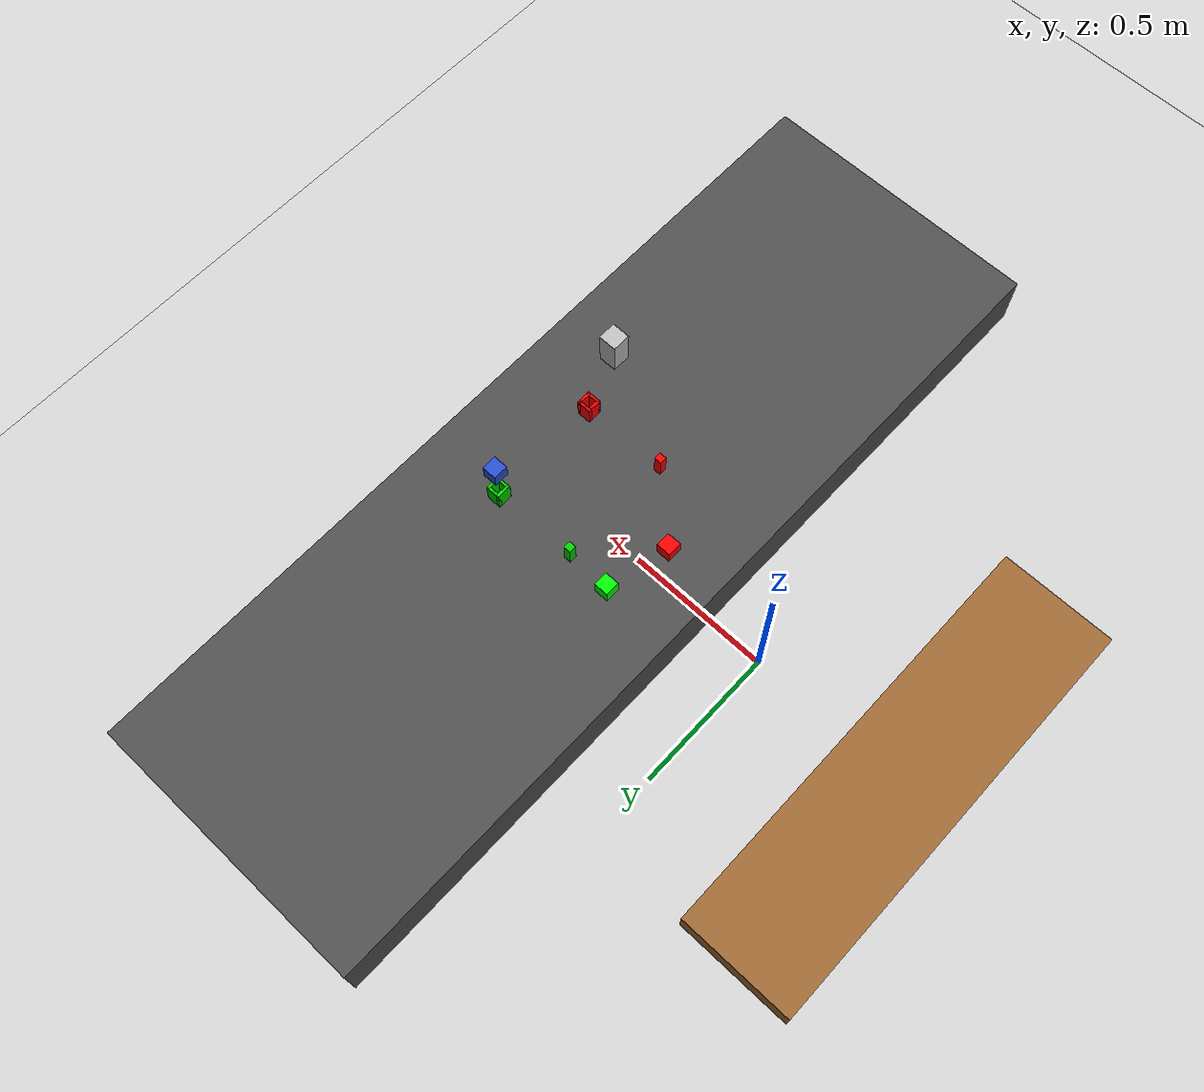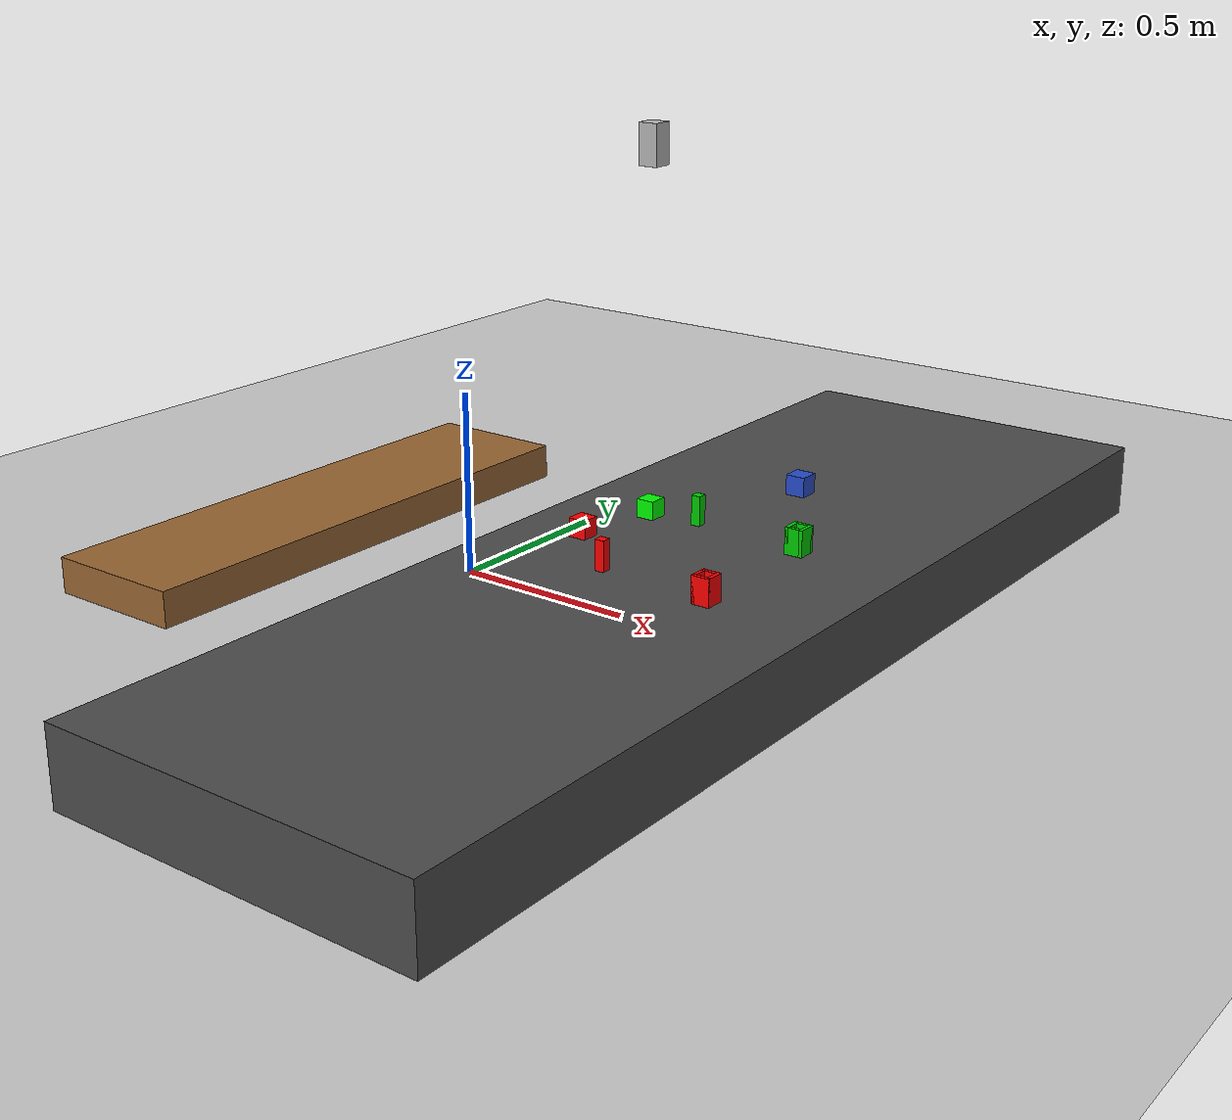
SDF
<?xml version="1.0" ?>
<sdf version="1.8">
  <world name="pick_and_place_world">

    <!-- Physics -->
    <physics name="1ms" type="ignored">
      <max_step_size>0.001</max_step_size>
      <real_time_factor>1.0</real_time_factor>
    </physics>

    <!-- Plugins - Updated for Gazebo Harmonic 8.x -->
    <plugin
      filename="gz-sim-physics-system"
      name="gz::sim::systems::Physics">
    </plugin>
    <plugin
      filename="gz-sim-user-commands-system"
      name="gz::sim::systems::UserCommands">
    </plugin>
    <plugin
      filename="gz-sim-scene-broadcaster-system"
      name="gz::sim::systems::SceneBroadcaster">
    </plugin>
    <plugin
      filename="gz-sim-sensors-system"
      name="gz::sim::systems::Sensors">
      <render_engine>ogre2</render_engine>
    </plugin>
    <plugin
      filename="gz-sim-imu-system"
      name="gz::sim::systems::Imu">
    </plugin>

    <!-- Lighting -->
    <light type="directional" name="sun">
      <cast_shadows>true</cast_shadows>
      <pose>0 0 10 0 0 0</pose>
      <diffuse>0.8 0.8 0.8 1</diffuse>
      <specular>0.2 0.2 0.2 1</specular>
      <attenuation>
        <range>1000</range>
        <constant>0.9</constant>
        <linear>0.01</linear>
        <quadratic>0.001</quadratic>
      </attenuation>
      <direction>-0.5 0.1 -0.9</direction>
    </light>

    <!-- Ground plane -->
    <model name="ground_plane">
      <static>true</static>
      <link name="link">
        <collision name="collision">
          <geometry>
            <plane>
              <normal>0 0 1</normal>
              <size>100 100</size>
            </plane>
          </geometry>
        </collision>
        <visual name="visual">
          <geometry>
            <plane>
              <normal>0 0 1</normal>
              <size>100 100</size>
            </plane>
          </geometry>
          <material>
            <ambient>0.8 0.8 0.8 1</ambient>
            <diffuse>0.8 0.8 0.8 1</diffuse>
            <specular>0.8 0.8 0.8 1</specular>
          </material>
        </visual>
      </link>
    </model>

    <!-- Workbench -->
    <model name="workbench">
      <pose>0.7 0 0.1 0 0 0</pose>
      <static>true</static>
      <link name="link">
        <collision name="collision">
          <geometry>
            <box>
              <size>1.0 3.0 0.2</size>
            </box>
          </geometry>
        </collision>
        <visual name="visual">
          <geometry>
            <box>
              <size>1.0 3.0 0.2</size>
            </box>
          </geometry>
          <material>
            <ambient>0.2 0.2 0.2 1</ambient>
            <diffuse>0.3 0.3 0.3 1</diffuse>
          </material>
        </visual>
      </link>
    </model>

    <!-- Bin bench -->
    <model name="bin_bench">
      <pose>-0.55 0 0.05 0 0 0</pose>
      <static>true</static>
      <link name="link">
        <collision name="collision">
          <geometry>
            <box>
              <size>0.4 1.5 0.1</size>
            </box>
          </geometry>
        </collision>
        <visual name="visual">
          <geometry>
            <box>
              <size>0.4 1.5 0.1</size>
            </box>
          </geometry>
          <material>
            <ambient>0.5 0.3 0.1 1</ambient>
            <diffuse>0.6 0.4 0.2 1</diffuse>
          </material>
        </visual>
      </link>
    </model>

    <!-- Colored bins removed per user request -->

    <!-- Red blocks -->
    <model name="red_block">
      <plugin filename="gz-sim-pose-publisher-system" name="gz::sim::systems::PosePublisher">
        <publish_link_pose>false</publish_link_pose>
        <use_pose_vector_msg>false</use_pose_vector_msg>
        <static_publisher>true</static_publisher>
        <static_update_frequency>30</static_update_frequency>
      </plugin>
      <pose>0.4 -0.02 0.225 0 0 0</pose>
      <link name="link">
        <inertial>
          <mass>0.05</mass>
          <inertia>
            <ixx>0.00002</ixx>
            <iyy>0.00002</iyy>
            <izz>0.00002</izz>
          </inertia>
        </inertial>
        <collision name="collision">
          <geometry>
            <box>
              <size>0.05 0.05 0.05</size>
            </box>
          </geometry>
        </collision>
        <visual name="visual">
          <geometry>
            <box>
              <size>0.05 0.05 0.05</size>
            </box>
          </geometry>
          <material>
            <ambient>1 0 0 1</ambient>
            <diffuse>1 0 0 1</diffuse>
          </material>
        </visual>
      </link>
    </model>

    <!-- Green block -->
    <model name="green_block">
      <plugin filename="gz-sim-pose-publisher-system" name="gz::sim::systems::PosePublisher">
        <publish_link_pose>false</publish_link_pose>
        <use_pose_vector_msg>false</use_pose_vector_msg>
        <static_publisher>true</static_publisher>
        <static_update_frequency>30</static_update_frequency>
      </plugin>
      <pose>0.45 0.2 0.225 0 0 0</pose>
      <link name="link">
        <inertial>
          <mass>0.05</mass>
          <inertia>
            <ixx>0.00002</ixx>
            <iyy>0.00002</iyy>
            <izz>0.00002</izz>
          </inertia>
        </inertial>
        <collision name="collision">
          <geometry>
            <box>
              <size>0.05 0.05 0.05</size>
            </box>
          </geometry>
        </collision>
        <visual name="visual">
          <geometry>
            <box>
              <size>0.05 0.05 0.05</size>
            </box>
          </geometry>
          <material>
            <ambient>0 1 0 1</ambient>
            <diffuse>0 1 0 1</diffuse>
          </material>
        </visual>
      </link>
    </model>

    <!-- Solid Cuboid for Insertion Task (Red Peg) -->
    <include>
      <uri>model://red_solid</uri>
      <name>red_solid</name>
      <pose>0.6 -0.2 0.25 0 1.5708 4.7124</pose>
    </include>

    <!-- Hollow Receptacle for Insertion Task (Red Box) -->
    <include>
      <uri>model://red_hollow</uri>
      <name>red_hollow</name>
      <pose>0.9 -0.2 0.231 0 -1.5708 0</pose>
    </include>

    <!-- Solid Cuboid for Insertion Task (Green Peg) -->
    <include>
      <uri>model://green_solid</uri>
      <name>green_solid</name>
      <pose>0.6 0.2 0.25 0 1.5708 4.7124</pose>
    </include>

    <!-- Hollow Receptacle for Insertion Task (Green Box) -->
    <include>
      <uri>model://green_hollow</uri>
      <name>green_hollow</name>
      <pose>0.9 0.2 0.231 0 -1.5708 0</pose>
    </include>

    <!-- Blue Block on top of Green Hollow (7th block for TAMP) -->
    <include>
      <uri>model://block_blue</uri>
      <name>blue_block</name>
      <pose>0.9 0.2 0.381 0 0 0</pose>
    </include>

    <!-- RGB-D Camera -->
    <model name="rgbd_camera">
      <pose>0.6 0 1.2 0 1.57 0</pose>
      <static>true</static>
      <link name="link">
        <visual name="visual">
          <geometry>
            <box>
              <size>0.1 0.05 0.05</size>
            </box>
          </geometry>
        </visual>

        <!-- RGB Camera -->
        <sensor name="camera" type="camera">
          <camera>
            <horizontal_fov>1.047</horizontal_fov>
            <image>
              <width>640</width>
              <height>480</height>
            </image>
            <clip>
              <near>0.1</near>
              <far>100</far>
            </clip>
          </camera>
          <always_on>1</always_on>
          <update_rate>30</update_rate>
          <visualize>true</visualize>
          <topic>/camera/color/image_raw</topic>
        </sensor>

        <!-- Depth Camera -->
        <sensor name="depth_camera" type="depth_camera">
          <camera>
            <horizontal_fov>1.047</horizontal_fov>
            <image>
              <width>640</width>
              <height>480</height>
            </image>
            <clip>
              <near>0.1</near>
              <far>10</far>
            </clip>
          </camera>
          <always_on>1</always_on>
          <update_rate>30</update_rate>
          <visualize>false</visualize>
          <topic>/camera/depth/image_raw</topic>
        </sensor>
      </link>
    </model>

  </world>
</sdf>

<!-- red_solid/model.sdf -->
<sdf version="1.6">
  <model name="red_solid">
    <plugin filename="gz-sim-pose-publisher-system" name="gz::sim::systems::PosePublisher">
      <publish_link_pose>false</publish_link_pose>
      <use_pose_vector_msg>false</use_pose_vector_msg>
      <static_publisher>true</static_publisher>
      <static_update_frequency>30</static_update_frequency>
    </plugin>
    <link name="link">
      <inertial>
        <mass>0.1</mass>
        <inertia>
          <ixx>0.00005</ixx>
          <iyy>0.00008</iyy>
          <izz>0.00005</izz>
        </inertia>
      </inertial>
      <collision name="collision">
        <geometry>
          <box>
            <size>0.08 0.025 0.025</size>
          </box>
        </geometry>
      </collision>
      <visual name="visual">
        <geometry>
          <box>
            <size>0.08 0.025 0.025</size>
          </box>
        </geometry>
        <material>
          <ambient>1 0 0 1</ambient>
          <diffuse>1 0 0 1</diffuse>
          <specular>0.5 0.5 0.5 1</specular>
        </material>
      </visual>
    </link>
  </model>
</sdf>

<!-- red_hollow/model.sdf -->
<sdf version="1.6">
  <model name="red_hollow">
    <plugin filename="gz-sim-pose-publisher-system" name="gz::sim::systems::PosePublisher">
      <publish_link_pose>false</publish_link_pose>
      <use_pose_vector_msg>false</use_pose_vector_msg>
      <static_publisher>true</static_publisher>
      <static_update_frequency>30</static_update_frequency>
    </plugin>
    <link name="link">
      <inertial>
        <mass>0.2</mass>
        <inertia>
          <ixx>0.0001</ixx>
          <iyy>0.0001</iyy>
          <izz>0.0001</izz>
        </inertia>
      </inertial>

      <!-- Bottom wall -->
      <collision name="bottom">
        <pose>0 0 -0.020125 0 0 0</pose>
        <geometry>
          <box>
            <size>0.08 0.05 0.00975</size>
          </box>
        </geometry>
      </collision>
      <visual name="bottom_visual">
        <pose>0 0 -0.020125 0 0 0</pose>
        <geometry>
          <box>
            <size>0.08 0.05 0.00975</size>
          </box>
        </geometry>
        <material>
          <ambient>1 0 0 1</ambient>
          <diffuse>1 0 0 1</diffuse>
        </material>
      </visual>

      <!-- Left wall -->
      <collision name="left_wall">
        <pose>0 0.020125 0 0 0 0</pose>
        <geometry>
          <box>
            <size>0.08 0.00975 0.05</size>
          </box>
        </geometry>
      </collision>
      <visual name="left_wall_visual">
        <pose>0 0.020125 0 0 0 0</pose>
        <geometry>
          <box>
            <size>0.08 0.00975 0.05</size>
          </box>
        </geometry>
        <material>
          <ambient>1 0 0 1</ambient>
          <diffuse>1 0 0 1</diffuse>
        </material>
      </visual>

      <!-- Right wall -->
      <collision name="right_wall">
        <pose>0 -0.020125 0 0 0 0</pose>
        <geometry>
          <box>
            <size>0.08 0.00975 0.05</size>
          </box>
        </geometry>
      </collision>
      <visual name="right_wall_visual">
        <pose>0 -0.020125 0 0 0 0</pose>
        <geometry>
          <box>
            <size>0.08 0.00975 0.05</size>
          </box>
        </geometry>
        <material>
          <ambient>1 0 0 1</ambient>
          <diffuse>1 0 0 1</diffuse>
        </material>
      </visual>

      <!-- Top wall -->
      <collision name="top_wall">
        <pose>0 0 0.020125 0 0 0</pose>
        <geometry>
          <box>
            <size>0.08 0.05 0.00975</size>
          </box>
        </geometry>
      </collision>
      <visual name="top_wall_visual">
        <pose>0 0 0.020125 0 0 0</pose>
        <geometry>
          <box>
            <size>0.08 0.05 0.00975</size>
          </box>
        </geometry>
        <material>
          <ambient>1 0 0 1</ambient>
          <diffuse>1 0 0 1</diffuse>
        </material>
      </visual>
    </link>
  </model>
</sdf>

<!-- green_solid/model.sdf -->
<sdf version="1.6">
  <model name="green_solid">
    <plugin filename="gz-sim-pose-publisher-system" name="gz::sim::systems::PosePublisher">
      <publish_link_pose>false</publish_link_pose>
      <use_pose_vector_msg>false</use_pose_vector_msg>
      <static_publisher>true</static_publisher>
      <static_update_frequency>30</static_update_frequency>
    </plugin>
    <link name="link">
      <inertial>
        <mass>0.1</mass>
        <inertia>
          <ixx>0.00005</ixx>
          <iyy>0.00008</iyy>
          <izz>0.00005</izz>
        </inertia>
      </inertial>
      <collision name="collision">
        <geometry>
          <box>
            <size>0.08 0.025 0.025</size>
          </box>
        </geometry>
      </collision>
      <visual name="visual">
        <geometry>
          <box>
            <size>0.08 0.025 0.025</size>
          </box>
        </geometry>
        <material>
          <ambient>0 0.6 0 1</ambient>
          <diffuse>0 0.8 0 1</diffuse>
          <specular>0.2 0.2 0.2 1</specular>
        </material>
      </visual>
    </link>
  </model>
</sdf>

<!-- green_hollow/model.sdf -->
<sdf version="1.6">
  <model name="green_hollow">
    <plugin filename="gz-sim-pose-publisher-system" name="gz::sim::systems::PosePublisher">
      <publish_link_pose>false</publish_link_pose>
      <use_pose_vector_msg>false</use_pose_vector_msg>
      <static_publisher>true</static_publisher>
      <static_update_frequency>30</static_update_frequency>
    </plugin>
    <link name="link">
      <inertial>
        <mass>0.2</mass>
        <inertia>
          <ixx>0.0001</ixx>
          <iyy>0.0001</iyy>
          <izz>0.0001</izz>
        </inertia>
      </inertial>

      <!-- Bottom wall -->
      <collision name="bottom">
        <pose>0 0 -0.020125 0 0 0</pose>
        <geometry>
          <box>
            <size>0.08 0.05 0.00975</size>
          </box>
        </geometry>
      </collision>
      <visual name="bottom_visual">
        <pose>0 0 -0.020125 0 0 0</pose>
        <geometry>
          <box>
            <size>0.08 0.05 0.00975</size>
          </box>
        </geometry>
        <material>
          <ambient>0 0.6 0 1</ambient>
          <diffuse>0 0.8 0 1</diffuse>
        </material>
      </visual>

      <!-- Left wall -->
      <collision name="left_wall">
        <pose>0 0.020125 0 0 0 0</pose>
        <geometry>
          <box>
            <size>0.08 0.00975 0.05</size>
          </box>
        </geometry>
      </collision>
      <visual name="left_wall_visual">
        <pose>0 0.020125 0 0 0 0</pose>
        <geometry>
          <box>
            <size>0.08 0.00975 0.05</size>
          </box>
        </geometry>
        <material>
          <ambient>0 0.6 0 1</ambient>
          <diffuse>0 0.8 0 1</diffuse>
        </material>
      </visual>

      <!-- Right wall -->
      <collision name="right_wall">
        <pose>0 -0.020125 0 0 0 0</pose>
        <geometry>
          <box>
            <size>0.08 0.00975 0.05</size>
          </box>
        </geometry>
      </collision>
      <visual name="right_wall_visual">
        <pose>0 -0.020125 0 0 0 0</pose>
        <geometry>
          <box>
            <size>0.08 0.00975 0.05</size>
          </box>
        </geometry>
        <material>
          <ambient>0 0.6 0 1</ambient>
          <diffuse>0 0.8 0 1</diffuse>
        </material>
      </visual>

      <!-- Top wall -->
      <collision name="top_wall">
        <pose>0 0 0.020125 0 0 0</pose>
        <geometry>
          <box>
            <size>0.08 0.05 0.00975</size>
          </box>
        </geometry>
      </collision>
      <visual name="top_wall_visual">
        <pose>0 0 0.020125 0 0 0</pose>
        <geometry>
          <box>
            <size>0.08 0.05 0.00975</size>
          </box>
        </geometry>
        <material>
          <ambient>0 0.6 0 1</ambient>
          <diffuse>0 0.8 0 1</diffuse>
        </material>
      </visual>
    </link>
  </model>
</sdf>

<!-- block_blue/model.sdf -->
<sdf version='1.6'>
  <model name='block_blue'>
    <plugin filename="gz-sim-pose-publisher-system" name="gz::sim::systems::PosePublisher">
      <publish_link_pose>false</publish_link_pose>
      <use_pose_vector_msg>false</use_pose_vector_msg>
      <static_publisher>true</static_publisher>
      <static_update_frequency>30</static_update_frequency>
    </plugin>
    <link name='link'>
      <pose>0.0 0.0 0.0 0 -0 0</pose>
      <inertial>
        <!--NOTE: Uses limestone density (i.e 2000 kg/m^3) to calculate the mass
        see https://en.wikipedia.org/wiki/Limestone
        -->
        <mass>0.125</mass>
        <inertia>
          <ixx>4.369e-5</ixx>
          <ixy>0</ixy>
          <ixz>0</ixz>
          <iyy>4.028e-5</iyy>
          <iyz>0</iyz>
          <izz>1.407e-5</izz>
        </inertia>
        <pose>0 0 0 0 -0 0</pose>
      </inertial>
        <self_collide>0</self_collide>
      <kinematic>0</kinematic>
      <enable_wind>0</enable_wind>
      <pose>0 0 0 0 -0 0</pose>
      <visual name='visual'>
        <geometry>
          <box>
            <size>0.05 0.05 0.05</size>
          </box>
        </geometry>
        <material>
          <script>
            <uri>file://media/materials/scripts/gazebo.material</uri>
            <name>Gazebo/Blue</name>
          </script>
          <shader type='pixel'/>
        </material>
        <pose>0 0 0 0 -0 0</pose>
        <transparency>0</transparency>
        <cast_shadows>1</cast_shadows>
      </visual>
      <collision name='collision'>
        <laser_retro>0</laser_retro>
        <max_contacts>10</max_contacts>
        <pose>0 0 0 0 -0 0</pose>
        <geometry>
          <box>
            <size>0.05 0.05 0.05</size>
          </box>
        </geometry>
        <surface>
          <!--NOTE: Uses dynamic friction of brick on a wood surface
          see https://www.engineeringtoolbox.com/friction-coefficients-d_778.html
          -->
          <friction>
            <ode>
              <mu>1.0</mu>
              <mu2>1.0</mu2>
              <fdir1>0 0 0</fdir1>
              <slip1>0</slip1>
              <slip2>0</slip2>
            </ode>
            <torsional>
              <coefficient>1</coefficient>
              <patch_radius>0</patch_radius>
              <surface_radius>0</surface_radius>
              <use_patch_radius>1</use_patch_radius>
              <ode>
                <slip>0</slip>
              </ode>
            </torsional>
          </friction>
          <bounce>
            <restitution_coefficient>0</restitution_coefficient>
            <threshold>1e+06</threshold>
          </bounce>
          <contact>
            <collide_without_contact>0</collide_without_contact>
            <collide_without_contact_bitmask>1</collide_without_contact_bitmask>
            <collide_bitmask>1</collide_bitmask>
            <ode>
              <soft_cfm>0</soft_cfm>
              <soft_erp>0.2</soft_erp>
              <kp>1e+13</kp>
              <kd>5</kd>
              <max_vel>0</max_vel>
              <min_depth>0.003</min_depth>
            </ode>
            <bullet>
              <split_impulse>1</split_impulse>
              <split_impulse_penetration_threshold>-0.01</split_impulse_penetration_threshold>
              <soft_cfm>0</soft_cfm>
              <soft_erp>0.2</soft_erp>
              <kp>1e+13</kp>
              <kd>1</kd>
            </bullet>
          </contact>
        </surface>
      </collision>
    </link>
    <static>0</static>
    <allow_auto_disable>1</allow_auto_disable>
  </model>
</sdf>
